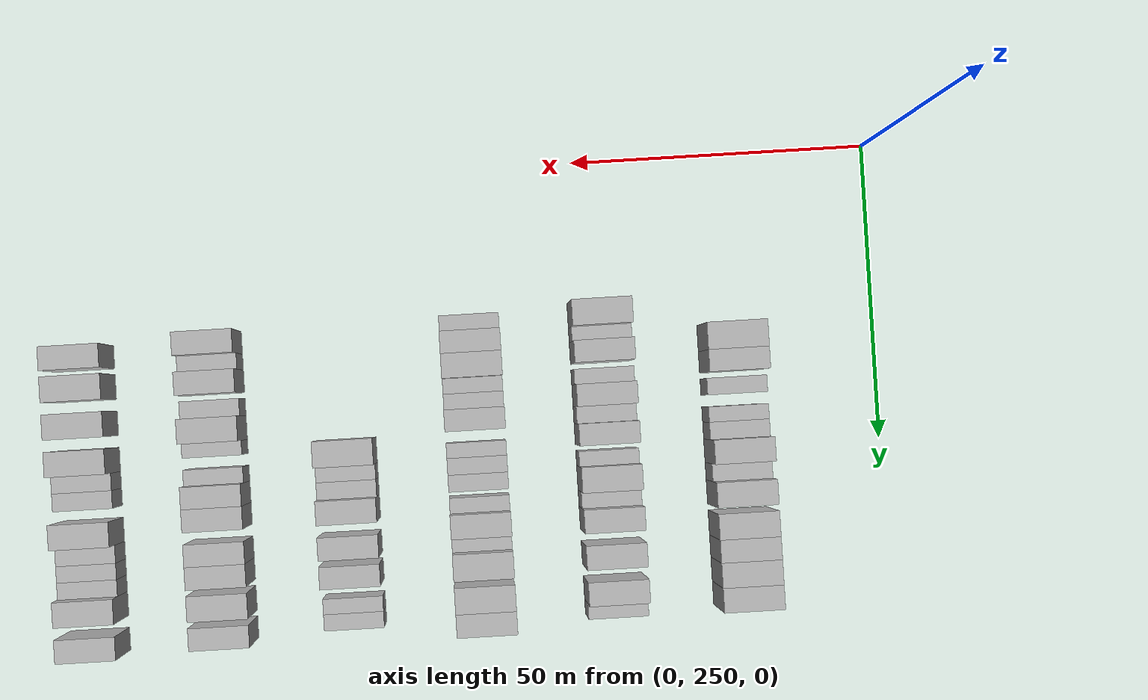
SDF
<sdf version="1.6">
 <world name="default">
  <model name="building_158">
   <static>1</static>
   <pose>25.0000 281.3262 0 0.000000 0.000000 0.000000</pose>
   <link name="link">
    <pose>0 0 4.50 0 0 0</pose>
    <collision name="collision"><geometry><box><size>10.0000 4.4945 9.0000</size></box></geometry></collision>
    <visual name="visual">
     <cast_shadows>0</cast_shadows>
     <geometry><box><size>10.0000 4.4945 9.0000</size></box></geometry>
     <material>
      <script>
       <uri>model://HANNAS_wall/materials/scripts</uri>
       <uri>model://HANNAS_wall/materials/textures</uri>
       <name>vrc/HANNAS_wall</name>
      </script>
     </material>
    </visual>
   </link>
  </model>
  <model name="building_159">
   <static>1</static>
   <pose>25.0000 285.4029 0 0.000000 0.000000 0.000000</pose>
   <link name="link">
    <pose>0 0 4.50 0 0 0</pose>
    <collision name="collision"><geometry><box><size>10.0000 3.6589 9.0000</size></box></geometry></collision>
    <visual name="visual">
     <cast_shadows>0</cast_shadows>
     <geometry><box><size>10.0000 3.6589 9.0000</size></box></geometry>
     <material>
      <script>
       <uri>model://HANNAS_wall/materials/scripts</uri>
       <uri>model://HANNAS_wall/materials/textures</uri>
       <name>vrc/HANNAS_wall</name>
      </script>
     </material>
    </visual>
   </link>
  </model>
  <model name="building_160">
   <static>1</static>
   <pose>25.0000 289.6306 0 0.000000 0.000000 0.000000</pose>
   <link name="link">
    <pose>0 0 3.00 0 0 0</pose>
    <collision name="collision"><geometry><box><size>10.0000 2.7967 6.0000</size></box></geometry></collision>
    <visual name="visual">
     <cast_shadows>0</cast_shadows>
     <geometry><box><size>10.0000 2.7967 6.0000</size></box></geometry>
     <material>
      <script>
       <uri>model://HANNAS_wall/materials/scripts</uri>
       <uri>model://HANNAS_wall/materials/textures</uri>
       <name>vrc/HANNAS_wall</name>
      </script>
     </material>
    </visual>
   </link>
  </model>
  <model name="building_161">
   <static>1</static>
   <pose>25.0000 294.3040 0 0.000000 0.000000 0.000000</pose>
   <link name="link">
    <pose>0 0 3.00 0 0 0</pose>
    <collision name="collision"><geometry><box><size>10.0000 2.5500 6.0000</size></box></geometry></collision>
    <visual name="visual">
     <cast_shadows>0</cast_shadows>
     <geometry><box><size>10.0000 2.5500 6.0000</size></box></geometry>
     <material>
      <script>
       <uri>model://HANNAS_wall/materials/scripts</uri>
       <uri>model://HANNAS_wall/materials/textures</uri>
       <name>vrc/HANNAS_wall</name>
      </script>
     </material>
    </visual>
   </link>
  </model>
  <model name="building_162">
   <static>1</static>
   <pose>25.0000 297.0370 0 0.000000 0.000000 0.000000</pose>
   <link name="link">
    <pose>0 0 3.00 0 0 0</pose>
    <collision name="collision"><geometry><box><size>10.0000 2.9160 6.0000</size></box></geometry></collision>
    <visual name="visual">
     <cast_shadows>0</cast_shadows>
     <geometry><box><size>10.0000 2.9160 6.0000</size></box></geometry>
     <material>
      <script>
       <uri>model://HANNAS_wall/materials/scripts</uri>
       <uri>model://HANNAS_wall/materials/textures</uri>
       <name>vrc/HANNAS_wall</name>
      </script>
     </material>
    </visual>
   </link>
  </model>
  <model name="building_163">
   <static>1</static>
   <pose>25.0000 300.5035 0 0.000000 0.000000 0.000000</pose>
   <link name="link">
    <pose>0 0 4.50 0 0 0</pose>
    <collision name="collision"><geometry><box><size>10.0000 4.0169 9.0000</size></box></geometry></collision>
    <visual name="visual">
     <cast_shadows>0</cast_shadows>
     <geometry><box><size>10.0000 4.0169 9.0000</size></box></geometry>
     <material>
      <script>
       <uri>model://HANNAS_wall/materials/scripts</uri>
       <uri>model://HANNAS_wall/materials/textures</uri>
       <name>vrc/HANNAS_wall</name>
      </script>
     </material>
    </visual>
   </link>
  </model>
  <model name="building_164">
   <static>1</static>
   <pose>25.0000 304.0001 0 0.000000 0.000000 0.000000</pose>
   <link name="link">
    <pose>0 0 3.00 0 0 0</pose>
    <collision name="collision"><geometry><box><size>10.0000 2.9763 6.0000</size></box></geometry></collision>
    <visual name="visual">
     <cast_shadows>0</cast_shadows>
     <geometry><box><size>10.0000 2.9763 6.0000</size></box></geometry>
     <material>
      <script>
       <uri>model://HANNAS_wall/materials/scripts</uri>
       <uri>model://HANNAS_wall/materials/textures</uri>
       <name>vrc/HANNAS_wall</name>
      </script>
     </material>
    </visual>
   </link>
  </model>
  <model name="building_165">
   <static>1</static>
   <pose>25.0000 307.5740 0 0.000000 0.000000 0.000000</pose>
   <link name="link">
    <pose>0 0 4.50 0 0 0</pose>
    <collision name="collision"><geometry><box><size>10.0000 4.1715 9.0000</size></box></geometry></collision>
    <visual name="visual">
     <cast_shadows>0</cast_shadows>
     <geometry><box><size>10.0000 4.1715 9.0000</size></box></geometry>
     <material>
      <script>
       <uri>model://HANNAS_wall/materials/scripts</uri>
       <uri>model://HANNAS_wall/materials/textures</uri>
       <name>vrc/HANNAS_wall</name>
      </script>
     </material>
    </visual>
   </link>
  </model>
  <model name="building_166">
   <static>1</static>
   <pose>25.0000 312.7942 0 0.000000 0.000000 0.000000</pose>
   <link name="link">
    <pose>0 0 4.50 0 0 0</pose>
    <collision name="collision"><geometry><box><size>10.0000 4.2689 9.0000</size></box></geometry></collision>
    <visual name="visual">
     <cast_shadows>0</cast_shadows>
     <geometry><box><size>10.0000 4.2689 9.0000</size></box></geometry>
     <material>
      <script>
       <uri>model://HANNAS_wall/materials/scripts</uri>
       <uri>model://HANNAS_wall/materials/textures</uri>
       <name>vrc/HANNAS_wall</name>
      </script>
     </material>
    </visual>
   </link>
  </model>
  <model name="building_167">
   <static>1</static>
   <pose>25.0000 316.8188 0 0.000000 0.000000 0.000000</pose>
   <link name="link">
    <pose>0 0 4.50 0 0 0</pose>
    <collision name="collision"><geometry><box><size>10.0000 3.7802 9.0000</size></box></geometry></collision>
    <visual name="visual">
     <cast_shadows>0</cast_shadows>
     <geometry><box><size>10.0000 3.7802 9.0000</size></box></geometry>
     <material>
      <script>
       <uri>model://HANNAS_wall/materials/scripts</uri>
       <uri>model://HANNAS_wall/materials/textures</uri>
       <name>vrc/HANNAS_wall</name>
      </script>
     </material>
    </visual>
   </link>
  </model>
  <model name="building_168">
   <static>1</static>
   <pose>25.0000 320.7726 0 0.000000 0.000000 0.000000</pose>
   <link name="link">
    <pose>0 0 4.50 0 0 0</pose>
    <collision name="collision"><geometry><box><size>10.0000 4.1275 9.0000</size></box></geometry></collision>
    <visual name="visual">
     <cast_shadows>0</cast_shadows>
     <geometry><box><size>10.0000 4.1275 9.0000</size></box></geometry>
     <material>
      <script>
       <uri>model://HANNAS_wall/materials/scripts</uri>
       <uri>model://HANNAS_wall/materials/textures</uri>
       <name>vrc/HANNAS_wall</name>
      </script>
     </material>
    </visual>
   </link>
  </model>
  <model name="building_169">
   <static>1</static>
   <pose>25.0000 324.8593 0 0.000000 0.000000 0.000000</pose>
   <link name="link">
    <pose>0 0 4.50 0 0 0</pose>
    <collision name="collision"><geometry><box><size>10.0000 4.0460 9.0000</size></box></geometry></collision>
    <visual name="visual">
     <cast_shadows>0</cast_shadows>
     <geometry><box><size>10.0000 4.0460 9.0000</size></box></geometry>
     <material>
      <script>
       <uri>model://HANNAS_wall/materials/scripts</uri>
       <uri>model://HANNAS_wall/materials/textures</uri>
       <name>vrc/HANNAS_wall</name>
      </script>
     </material>
    </visual>
   </link>
  </model>
  <model name="building_348">
   <static>1</static>
   <pose>47.0000 276.1629 0 0.000000 0.000000 0.000000</pose>
   <link name="link">
    <pose>0 0 4.50 0 0 0</pose>
    <collision name="collision"><geometry><box><size>10.0000 4.3160 9.0000</size></box></geometry></collision>
    <visual name="visual">
     <cast_shadows>0</cast_shadows>
     <geometry><box><size>10.0000 4.3160 9.0000</size></box></geometry>
     <material>
      <script>
       <uri>model://HANNAS_wall/materials/scripts</uri>
       <uri>model://HANNAS_wall/materials/textures</uri>
       <name>vrc/HANNAS_wall</name>
      </script>
     </material>
    </visual>
   </link>
  </model>
  <model name="building_349">
   <static>1</static>
   <pose>47.0000 279.5382 0 0.000000 0.000000 0.000000</pose>
   <link name="link">
    <pose>0 0 3.00 0 0 0</pose>
    <collision name="collision"><geometry><box><size>10.0000 2.4347 6.0000</size></box></geometry></collision>
    <visual name="visual">
     <cast_shadows>0</cast_shadows>
     <geometry><box><size>10.0000 2.4347 6.0000</size></box></geometry>
     <material>
      <script>
       <uri>model://HANNAS_wall/materials/scripts</uri>
       <uri>model://HANNAS_wall/materials/textures</uri>
       <name>vrc/HANNAS_wall</name>
      </script>
     </material>
    </visual>
   </link>
  </model>
  <model name="building_350">
   <static>1</static>
   <pose>47.0000 282.5893 0 0.000000 0.000000 0.000000</pose>
   <link name="link">
    <pose>0 0 4.50 0 0 0</pose>
    <collision name="collision"><geometry><box><size>10.0000 3.6675 9.0000</size></box></geometry></collision>
    <visual name="visual">
     <cast_shadows>0</cast_shadows>
     <geometry><box><size>10.0000 3.6675 9.0000</size></box></geometry>
     <material>
      <script>
       <uri>model://HANNAS_wall/materials/scripts</uri>
       <uri>model://HANNAS_wall/materials/textures</uri>
       <name>vrc/HANNAS_wall</name>
      </script>
     </material>
    </visual>
   </link>
  </model>
  <model name="building_351">
   <static>1</static>
   <pose>47.0000 286.7041 0 0.000000 0.000000 0.000000</pose>
   <link name="link">
    <pose>0 0 3.00 0 0 0</pose>
    <collision name="collision"><geometry><box><size>10.0000 2.5620 6.0000</size></box></geometry></collision>
    <visual name="visual">
     <cast_shadows>0</cast_shadows>
     <geometry><box><size>10.0000 2.5620 6.0000</size></box></geometry>
     <material>
      <script>
       <uri>model://HANNAS_wall/materials/scripts</uri>
       <uri>model://HANNAS_wall/materials/textures</uri>
       <name>vrc/HANNAS_wall</name>
      </script>
     </material>
    </visual>
   </link>
  </model>
  <model name="building_352">
   <static>1</static>
   <pose>47.0000 289.8244 0 0.000000 0.000000 0.000000</pose>
   <link name="link">
    <pose>0 0 4.50 0 0 0</pose>
    <collision name="collision"><geometry><box><size>10.0000 3.6787 9.0000</size></box></geometry></collision>
    <visual name="visual">
     <cast_shadows>0</cast_shadows>
     <geometry><box><size>10.0000 3.6787 9.0000</size></box></geometry>
     <material>
      <script>
       <uri>model://HANNAS_wall/materials/scripts</uri>
       <uri>model://HANNAS_wall/materials/textures</uri>
       <name>vrc/HANNAS_wall</name>
      </script>
     </material>
    </visual>
   </link>
  </model>
  <model name="building_353">
   <static>1</static>
   <pose>47.0000 293.0947 0 0.000000 0.000000 0.000000</pose>
   <link name="link">
    <pose>0 0 3.00 0 0 0</pose>
    <collision name="collision"><geometry><box><size>10.0000 2.8618 6.0000</size></box></geometry></collision>
    <visual name="visual">
     <cast_shadows>0</cast_shadows>
     <geometry><box><size>10.0000 2.8618 6.0000</size></box></geometry>
     <material>
      <script>
       <uri>model://HANNAS_wall/materials/scripts</uri>
       <uri>model://HANNAS_wall/materials/textures</uri>
       <name>vrc/HANNAS_wall</name>
      </script>
     </material>
    </visual>
   </link>
  </model>
  <model name="building_354">
   <static>1</static>
   <pose>47.0000 296.3390 0 0.000000 0.000000 0.000000</pose>
   <link name="link">
    <pose>0 0 4.50 0 0 0</pose>
    <collision name="collision"><geometry><box><size>10.0000 3.6269 9.0000</size></box></geometry></collision>
    <visual name="visual">
     <cast_shadows>0</cast_shadows>
     <geometry><box><size>10.0000 3.6269 9.0000</size></box></geometry>
     <material>
      <script>
       <uri>model://HANNAS_wall/materials/scripts</uri>
       <uri>model://HANNAS_wall/materials/textures</uri>
       <name>vrc/HANNAS_wall</name>
      </script>
     </material>
    </visual>
   </link>
  </model>
  <model name="building_355">
   <static>1</static>
   <pose>47.0000 300.4190 0 0.000000 0.000000 0.000000</pose>
   <link name="link">
    <pose>0 0 3.00 0 0 0</pose>
    <collision name="collision"><geometry><box><size>10.0000 2.5331 6.0000</size></box></geometry></collision>
    <visual name="visual">
     <cast_shadows>0</cast_shadows>
     <geometry><box><size>10.0000 2.5331 6.0000</size></box></geometry>
     <material>
      <script>
       <uri>model://HANNAS_wall/materials/scripts</uri>
       <uri>model://HANNAS_wall/materials/textures</uri>
       <name>vrc/HANNAS_wall</name>
      </script>
     </material>
    </visual>
   </link>
  </model>
  <model name="building_356">
   <static>1</static>
   <pose>47.0000 303.8055 0 0.000000 0.000000 0.000000</pose>
   <link name="link">
    <pose>0 0 4.50 0 0 0</pose>
    <collision name="collision"><geometry><box><size>10.0000 4.2398 9.0000</size></box></geometry></collision>
    <visual name="visual">
     <cast_shadows>0</cast_shadows>
     <geometry><box><size>10.0000 4.2398 9.0000</size></box></geometry>
     <material>
      <script>
       <uri>model://HANNAS_wall/materials/scripts</uri>
       <uri>model://HANNAS_wall/materials/textures</uri>
       <name>vrc/HANNAS_wall</name>
      </script>
     </material>
    </visual>
   </link>
  </model>
  <model name="building_357">
   <static>1</static>
   <pose>47.0000 307.2981 0 0.000000 0.000000 0.000000</pose>
   <link name="link">
    <pose>0 0 3.00 0 0 0</pose>
    <collision name="collision"><geometry><box><size>10.0000 2.7455 6.0000</size></box></geometry></collision>
    <visual name="visual">
     <cast_shadows>0</cast_shadows>
     <geometry><box><size>10.0000 2.7455 6.0000</size></box></geometry>
     <material>
      <script>
       <uri>model://HANNAS_wall/materials/scripts</uri>
       <uri>model://HANNAS_wall/materials/textures</uri>
       <name>vrc/HANNAS_wall</name>
      </script>
     </material>
    </visual>
   </link>
  </model>
  <model name="building_358">
   <static>1</static>
   <pose>47.0000 310.6303 0 0.000000 0.000000 0.000000</pose>
   <link name="link">
    <pose>0 0 4.50 0 0 0</pose>
    <collision name="collision"><geometry><box><size>10.0000 3.9187 9.0000</size></box></geometry></collision>
    <visual name="visual">
     <cast_shadows>0</cast_shadows>
     <geometry><box><size>10.0000 3.9187 9.0000</size></box></geometry>
     <material>
      <script>
       <uri>model://HANNAS_wall/materials/scripts</uri>
       <uri>model://HANNAS_wall/materials/textures</uri>
       <name>vrc/HANNAS_wall</name>
      </script>
     </material>
    </visual>
   </link>
  </model>
  <model name="building_359">
   <static>1</static>
   <pose>47.0000 316.5955 0 0.000000 0.000000 0.000000</pose>
   <link name="link">
    <pose>0 0 4.50 0 0 0</pose>
    <collision name="collision"><geometry><box><size>10.0000 4.0117 9.0000</size></box></geometry></collision>
    <visual name="visual">
     <cast_shadows>0</cast_shadows>
     <geometry><box><size>10.0000 4.0117 9.0000</size></box></geometry>
     <material>
      <script>
       <uri>model://HANNAS_wall/materials/scripts</uri>
       <uri>model://HANNAS_wall/materials/textures</uri>
       <name>vrc/HANNAS_wall</name>
      </script>
     </material>
    </visual>
   </link>
  </model>
  <model name="building_360">
   <static>1</static>
   <pose>47.0000 322.5733 0 0.000000 0.000000 0.000000</pose>
   <link name="link">
    <pose>0 0 4.50 0 0 0</pose>
    <collision name="collision"><geometry><box><size>10.0000 3.9439 9.0000</size></box></geometry></collision>
    <visual name="visual">
     <cast_shadows>0</cast_shadows>
     <geometry><box><size>10.0000 3.9439 9.0000</size></box></geometry>
     <material>
      <script>
       <uri>model://HANNAS_wall/materials/scripts</uri>
       <uri>model://HANNAS_wall/materials/textures</uri>
       <name>vrc/HANNAS_wall</name>
      </script>
     </material>
    </visual>
   </link>
  </model>
  <model name="building_361">
   <static>1</static>
   <pose>47.0000 325.8267 0 0.000000 0.000000 0.000000</pose>
   <link name="link">
    <pose>0 0 3.00 0 0 0</pose>
    <collision name="collision"><geometry><box><size>10.0000 2.5629 6.0000</size></box></geometry></collision>
    <visual name="visual">
     <cast_shadows>0</cast_shadows>
     <geometry><box><size>10.0000 2.5629 6.0000</size></box></geometry>
     <material>
      <script>
       <uri>model://HANNAS_wall/materials/scripts</uri>
       <uri>model://HANNAS_wall/materials/textures</uri>
       <name>vrc/HANNAS_wall</name>
      </script>
     </material>
    </visual>
   </link>
  </model>
  <model name="building_539">
   <static>1</static>
   <pose>69.0000 276.5492 0 0.000000 0.000000 0.000000</pose>
   <link name="link">
    <pose>0 0 3.00 0 0 0</pose>
    <collision name="collision"><geometry><box><size>10.0000 2.7350 6.0000</size></box></geometry></collision>
    <visual name="visual">
     <cast_shadows>0</cast_shadows>
     <geometry><box><size>10.0000 2.7350 6.0000</size></box></geometry>
     <material>
      <script>
       <uri>model://HANNAS_wall/materials/scripts</uri>
       <uri>model://HANNAS_wall/materials/textures</uri>
       <name>vrc/HANNAS_wall</name>
      </script>
     </material>
    </visual>
   </link>
  </model>
  <model name="building_540">
   <static>1</static>
   <pose>69.0000 279.7661 0 0.000000 0.000000 0.000000</pose>
   <link name="link">
    <pose>0 0 4.50 0 0 0</pose>
    <collision name="collision"><geometry><box><size>10.0000 3.6988 9.0000</size></box></geometry></collision>
    <visual name="visual">
     <cast_shadows>0</cast_shadows>
     <geometry><box><size>10.0000 3.6988 9.0000</size></box></geometry>
     <material>
      <script>
       <uri>model://HANNAS_wall/materials/scripts</uri>
       <uri>model://HANNAS_wall/materials/textures</uri>
       <name>vrc/HANNAS_wall</name>
      </script>
     </material>
    </visual>
   </link>
  </model>
  <model name="building_541">
   <static>1</static>
   <pose>69.0000 283.6665 0 0.000000 0.000000 0.000000</pose>
   <link name="link">
    <pose>0 0 4.50 0 0 0</pose>
    <collision name="collision"><geometry><box><size>10.0000 4.1020 9.0000</size></box></geometry></collision>
    <visual name="visual">
     <cast_shadows>0</cast_shadows>
     <geometry><box><size>10.0000 4.1020 9.0000</size></box></geometry>
     <material>
      <script>
       <uri>model://HANNAS_wall/materials/scripts</uri>
       <uri>model://HANNAS_wall/materials/textures</uri>
       <name>vrc/HANNAS_wall</name>
      </script>
     </material>
    </visual>
   </link>
  </model>
  <model name="building_542">
   <static>1</static>
   <pose>69.0000 287.0019 0 0.000000 0.000000 0.000000</pose>
   <link name="link">
    <pose>0 0 3.00 0 0 0</pose>
    <collision name="collision"><geometry><box><size>10.0000 2.5689 6.0000</size></box></geometry></collision>
    <visual name="visual">
     <cast_shadows>0</cast_shadows>
     <geometry><box><size>10.0000 2.5689 6.0000</size></box></geometry>
     <material>
      <script>
       <uri>model://HANNAS_wall/materials/scripts</uri>
       <uri>model://HANNAS_wall/materials/textures</uri>
       <name>vrc/HANNAS_wall</name>
      </script>
     </material>
    </visual>
   </link>
  </model>
  <model name="building_543">
   <static>1</static>
   <pose>69.0000 289.5910 0 0.000000 0.000000 0.000000</pose>
   <link name="link">
    <pose>0 0 3.00 0 0 0</pose>
    <collision name="collision"><geometry><box><size>10.0000 2.6094 6.0000</size></box></geometry></collision>
    <visual name="visual">
     <cast_shadows>0</cast_shadows>
     <geometry><box><size>10.0000 2.6094 6.0000</size></box></geometry>
     <material>
      <script>
       <uri>model://HANNAS_wall/materials/scripts</uri>
       <uri>model://HANNAS_wall/materials/textures</uri>
       <name>vrc/HANNAS_wall</name>
      </script>
     </material>
    </visual>
   </link>
  </model>
  <model name="building_544">
   <static>1</static>
   <pose>69.0000 292.7013 0 0.000000 0.000000 0.000000</pose>
   <link name="link">
    <pose>0 0 4.50 0 0 0</pose>
    <collision name="collision"><geometry><box><size>10.0000 3.6111 9.0000</size></box></geometry></collision>
    <visual name="visual">
     <cast_shadows>0</cast_shadows>
     <geometry><box><size>10.0000 3.6111 9.0000</size></box></geometry>
     <material>
      <script>
       <uri>model://HANNAS_wall/materials/scripts</uri>
       <uri>model://HANNAS_wall/materials/textures</uri>
       <name>vrc/HANNAS_wall</name>
      </script>
     </material>
    </visual>
   </link>
  </model>
  <model name="building_545">
   <static>1</static>
   <pose>69.0000 297.7577 0 0.000000 0.000000 0.000000</pose>
   <link name="link">
    <pose>0 0 3.00 0 0 0</pose>
    <collision name="collision"><geometry><box><size>10.0000 2.5017 6.0000</size></box></geometry></collision>
    <visual name="visual">
     <cast_shadows>0</cast_shadows>
     <geometry><box><size>10.0000 2.5017 6.0000</size></box></geometry>
     <material>
      <script>
       <uri>model://HANNAS_wall/materials/scripts</uri>
       <uri>model://HANNAS_wall/materials/textures</uri>
       <name>vrc/HANNAS_wall</name>
      </script>
     </material>
    </visual>
   </link>
  </model>
  <model name="building_546">
   <static>1</static>
   <pose>69.0000 300.4136 0 0.000000 0.000000 0.000000</pose>
   <link name="link">
    <pose>0 0 3.00 0 0 0</pose>
    <collision name="collision"><geometry><box><size>10.0000 2.8100 6.0000</size></box></geometry></collision>
    <visual name="visual">
     <cast_shadows>0</cast_shadows>
     <geometry><box><size>10.0000 2.8100 6.0000</size></box></geometry>
     <material>
      <script>
       <uri>model://HANNAS_wall/materials/scripts</uri>
       <uri>model://HANNAS_wall/materials/textures</uri>
       <name>vrc/HANNAS_wall</name>
      </script>
     </material>
    </visual>
   </link>
  </model>
  <model name="building_547">
   <static>1</static>
   <pose>69.0000 303.2296 0 0.000000 0.000000 0.000000</pose>
   <link name="link">
    <pose>0 0 3.00 0 0 0</pose>
    <collision name="collision"><geometry><box><size>10.0000 2.8220 6.0000</size></box></geometry></collision>
    <visual name="visual">
     <cast_shadows>0</cast_shadows>
     <geometry><box><size>10.0000 2.8220 6.0000</size></box></geometry>
     <material>
      <script>
       <uri>model://HANNAS_wall/materials/scripts</uri>
       <uri>model://HANNAS_wall/materials/textures</uri>
       <name>vrc/HANNAS_wall</name>
      </script>
     </material>
    </visual>
   </link>
  </model>
  <model name="building_548">
   <static>1</static>
   <pose>69.0000 306.9405 0 0.000000 0.000000 0.000000</pose>
   <link name="link">
    <pose>0 0 3.00 0 0 0</pose>
    <collision name="collision"><geometry><box><size>10.0000 2.5997 6.0000</size></box></geometry></collision>
    <visual name="visual">
     <cast_shadows>0</cast_shadows>
     <geometry><box><size>10.0000 2.5997 6.0000</size></box></geometry>
     <material>
      <script>
       <uri>model://HANNAS_wall/materials/scripts</uri>
       <uri>model://HANNAS_wall/materials/textures</uri>
       <name>vrc/HANNAS_wall</name>
      </script>
     </material>
    </visual>
   </link>
  </model>
  <model name="building_549">
   <static>1</static>
   <pose>69.0000 310.2443 0 0.000000 0.000000 0.000000</pose>
   <link name="link">
    <pose>0 0 4.50 0 0 0</pose>
    <collision name="collision"><geometry><box><size>10.0000 4.0080 9.0000</size></box></geometry></collision>
    <visual name="visual">
     <cast_shadows>0</cast_shadows>
     <geometry><box><size>10.0000 4.0080 9.0000</size></box></geometry>
     <material>
      <script>
       <uri>model://HANNAS_wall/materials/scripts</uri>
       <uri>model://HANNAS_wall/materials/textures</uri>
       <name>vrc/HANNAS_wall</name>
      </script>
     </material>
    </visual>
   </link>
  </model>
  <model name="building_550">
   <static>1</static>
   <pose>69.0000 313.4828 0 0.000000 0.000000 0.000000</pose>
   <link name="link">
    <pose>0 0 3.00 0 0 0</pose>
    <collision name="collision"><geometry><box><size>10.0000 2.4690 6.0000</size></box></geometry></collision>
    <visual name="visual">
     <cast_shadows>0</cast_shadows>
     <geometry><box><size>10.0000 2.4690 6.0000</size></box></geometry>
     <material>
      <script>
       <uri>model://HANNAS_wall/materials/scripts</uri>
       <uri>model://HANNAS_wall/materials/textures</uri>
       <name>vrc/HANNAS_wall</name>
      </script>
     </material>
    </visual>
   </link>
  </model>
  <model name="building_551">
   <static>1</static>
   <pose>69.0000 316.9546 0 0.000000 0.000000 0.000000</pose>
   <link name="link">
    <pose>0 0 4.50 0 0 0</pose>
    <collision name="collision"><geometry><box><size>10.0000 4.4747 9.0000</size></box></geometry></collision>
    <visual name="visual">
     <cast_shadows>0</cast_shadows>
     <geometry><box><size>10.0000 4.4747 9.0000</size></box></geometry>
     <material>
      <script>
       <uri>model://HANNAS_wall/materials/scripts</uri>
       <uri>model://HANNAS_wall/materials/textures</uri>
       <name>vrc/HANNAS_wall</name>
      </script>
     </material>
    </visual>
   </link>
  </model>
  <model name="building_552">
   <static>1</static>
   <pose>69.0000 322.3818 0 0.000000 0.000000 0.000000</pose>
   <link name="link">
    <pose>0 0 4.50 0 0 0</pose>
    <collision name="collision"><geometry><box><size>10.0000 4.3797 9.0000</size></box></geometry></collision>
    <visual name="visual">
     <cast_shadows>0</cast_shadows>
     <geometry><box><size>10.0000 4.3797 9.0000</size></box></geometry>
     <material>
      <script>
       <uri>model://HANNAS_wall/materials/scripts</uri>
       <uri>model://HANNAS_wall/materials/textures</uri>
       <name>vrc/HANNAS_wall</name>
      </script>
     </material>
    </visual>
   </link>
  </model>
  <model name="building_553">
   <static>1</static>
   <pose>69.0000 326.4814 0 0.000000 0.000000 0.000000</pose>
   <link name="link">
    <pose>0 0 4.50 0 0 0</pose>
    <collision name="collision"><geometry><box><size>10.0000 3.8194 9.0000</size></box></geometry></collision>
    <visual name="visual">
     <cast_shadows>0</cast_shadows>
     <geometry><box><size>10.0000 3.8194 9.0000</size></box></geometry>
     <material>
      <script>
       <uri>model://HANNAS_wall/materials/scripts</uri>
       <uri>model://HANNAS_wall/materials/textures</uri>
       <name>vrc/HANNAS_wall</name>
      </script>
     </material>
    </visual>
   </link>
  </model>
  <model name="building_736">
   <static>1</static>
   <pose>91.0000 296.9986 0 0.000000 0.000000 0.000000</pose>
   <link name="link">
    <pose>0 0 4.50 0 0 0</pose>
    <collision name="collision"><geometry><box><size>10.0000 4.3578 9.0000</size></box></geometry></collision>
    <visual name="visual">
     <cast_shadows>0</cast_shadows>
     <geometry><box><size>10.0000 4.3578 9.0000</size></box></geometry>
     <material>
      <script>
       <uri>model://HANNAS_wall/materials/scripts</uri>
       <uri>model://HANNAS_wall/materials/textures</uri>
       <name>vrc/HANNAS_wall</name>
      </script>
     </material>
    </visual>
   </link>
  </model>
  <model name="building_737">
   <static>1</static>
   <pose>91.0000 300.4630 0 0.000000 0.000000 0.000000</pose>
   <link name="link">
    <pose>0 0 3.00 0 0 0</pose>
    <collision name="collision"><geometry><box><size>10.0000 2.5711 6.0000</size></box></geometry></collision>
    <visual name="visual">
     <cast_shadows>0</cast_shadows>
     <geometry><box><size>10.0000 2.5711 6.0000</size></box></geometry>
     <material>
      <script>
       <uri>model://HANNAS_wall/materials/scripts</uri>
       <uri>model://HANNAS_wall/materials/textures</uri>
       <name>vrc/HANNAS_wall</name>
      </script>
     </material>
    </visual>
   </link>
  </model>
  <model name="building_738">
   <static>1</static>
   <pose>91.0000 303.2059 0 0.000000 0.000000 0.000000</pose>
   <link name="link">
    <pose>0 0 3.00 0 0 0</pose>
    <collision name="collision"><geometry><box><size>10.0000 2.9147 6.0000</size></box></geometry></collision>
    <visual name="visual">
     <cast_shadows>0</cast_shadows>
     <geometry><box><size>10.0000 2.9147 6.0000</size></box></geometry>
     <material>
      <script>
       <uri>model://HANNAS_wall/materials/scripts</uri>
       <uri>model://HANNAS_wall/materials/textures</uri>
       <name>vrc/HANNAS_wall</name>
      </script>
     </material>
    </visual>
   </link>
  </model>
  <model name="building_739">
   <static>1</static>
   <pose>91.0000 306.6522 0 0.000000 0.000000 0.000000</pose>
   <link name="link">
    <pose>0 0 4.50 0 0 0</pose>
    <collision name="collision"><geometry><box><size>10.0000 3.9777 9.0000</size></box></geometry></collision>
    <visual name="visual">
     <cast_shadows>0</cast_shadows>
     <geometry><box><size>10.0000 3.9777 9.0000</size></box></geometry>
     <material>
      <script>
       <uri>model://HANNAS_wall/materials/scripts</uri>
       <uri>model://HANNAS_wall/materials/textures</uri>
       <name>vrc/HANNAS_wall</name>
      </script>
     </material>
    </visual>
   </link>
  </model>
  <model name="building_740">
   <static>1</static>
   <pose>91.0000 312.5573 0 0.000000 0.000000 0.000000</pose>
   <link name="link">
    <pose>0 0 4.50 0 0 0</pose>
    <collision name="collision"><geometry><box><size>10.0000 3.8325 9.0000</size></box></geometry></collision>
    <visual name="visual">
     <cast_shadows>0</cast_shadows>
     <geometry><box><size>10.0000 3.8325 9.0000</size></box></geometry>
     <material>
      <script>
       <uri>model://HANNAS_wall/materials/scripts</uri>
       <uri>model://HANNAS_wall/materials/textures</uri>
       <name>vrc/HANNAS_wall</name>
      </script>
     </material>
    </visual>
   </link>
  </model>
  <model name="building_741">
   <static>1</static>
   <pose>91.0000 317.3094 0 0.000000 0.000000 0.000000</pose>
   <link name="link">
    <pose>0 0 4.50 0 0 0</pose>
    <collision name="collision"><geometry><box><size>10.0000 3.6716 9.0000</size></box></geometry></collision>
    <visual name="visual">
     <cast_shadows>0</cast_shadows>
     <geometry><box><size>10.0000 3.6716 9.0000</size></box></geometry>
     <material>
      <script>
       <uri>model://HANNAS_wall/materials/scripts</uri>
       <uri>model://HANNAS_wall/materials/textures</uri>
       <name>vrc/HANNAS_wall</name>
      </script>
     </material>
    </visual>
   </link>
  </model>
  <model name="building_742">
   <static>1</static>
   <pose>91.0000 322.4280 0 0.000000 0.000000 0.000000</pose>
   <link name="link">
    <pose>0 0 3.00 0 0 0</pose>
    <collision name="collision"><geometry><box><size>10.0000 2.5657 6.0000</size></box></geometry></collision>
    <visual name="visual">
     <cast_shadows>0</cast_shadows>
     <geometry><box><size>10.0000 2.5657 6.0000</size></box></geometry>
     <material>
      <script>
       <uri>model://HANNAS_wall/materials/scripts</uri>
       <uri>model://HANNAS_wall/materials/textures</uri>
       <name>vrc/HANNAS_wall</name>
      </script>
     </material>
    </visual>
   </link>
  </model>
  <model name="building_743">
   <static>1</static>
   <pose>91.0000 325.0670 0 0.000000 0.000000 0.000000</pose>
   <link name="link">
    <pose>0 0 3.00 0 0 0</pose>
    <collision name="collision"><geometry><box><size>10.0000 2.7124 6.0000</size></box></geometry></collision>
    <visual name="visual">
     <cast_shadows>0</cast_shadows>
     <geometry><box><size>10.0000 2.7124 6.0000</size></box></geometry>
     <material>
      <script>
       <uri>model://HANNAS_wall/materials/scripts</uri>
       <uri>model://HANNAS_wall/materials/textures</uri>
       <name>vrc/HANNAS_wall</name>
      </script>
     </material>
    </visual>
   </link>
  </model>
  <model name="building_911">
   <static>1</static>
   <pose>113.0000 277.3767 0 0.000000 0.000000 0.000000</pose>
   <link name="link">
    <pose>0 0 4.50 0 0 0</pose>
    <collision name="collision"><geometry><box><size>10.0000 3.8989 9.0000</size></box></geometry></collision>
    <visual name="visual">
     <cast_shadows>0</cast_shadows>
     <geometry><box><size>10.0000 3.8989 9.0000</size></box></geometry>
     <material>
      <script>
       <uri>model://HANNAS_wall/materials/scripts</uri>
       <uri>model://HANNAS_wall/materials/textures</uri>
       <name>vrc/HANNAS_wall</name>
      </script>
     </material>
    </visual>
   </link>
  </model>
  <model name="building_912">
   <static>1</static>
   <pose>113.0000 280.6821 0 0.000000 0.000000 0.000000</pose>
   <link name="link">
    <pose>0 0 3.00 0 0 0</pose>
    <collision name="collision"><geometry><box><size>10.0000 2.7117 6.0000</size></box></geometry></collision>
    <visual name="visual">
     <cast_shadows>0</cast_shadows>
     <geometry><box><size>10.0000 2.7117 6.0000</size></box></geometry>
     <material>
      <script>
       <uri>model://HANNAS_wall/materials/scripts</uri>
       <uri>model://HANNAS_wall/materials/textures</uri>
       <name>vrc/HANNAS_wall</name>
      </script>
     </material>
    </visual>
   </link>
  </model>
  <model name="building_913">
   <static>1</static>
   <pose>113.0000 283.9781 0 0.000000 0.000000 0.000000</pose>
   <link name="link">
    <pose>0 0 4.50 0 0 0</pose>
    <collision name="collision"><geometry><box><size>10.0000 3.8804 9.0000</size></box></geometry></collision>
    <visual name="visual">
     <cast_shadows>0</cast_shadows>
     <geometry><box><size>10.0000 3.8804 9.0000</size></box></geometry>
     <material>
      <script>
       <uri>model://HANNAS_wall/materials/scripts</uri>
       <uri>model://HANNAS_wall/materials/textures</uri>
       <name>vrc/HANNAS_wall</name>
      </script>
     </material>
    </visual>
   </link>
  </model>
  <model name="building_914">
   <static>1</static>
   <pose>113.0000 288.3691 0 0.000000 0.000000 0.000000</pose>
   <link name="link">
    <pose>0 0 3.00 0 0 0</pose>
    <collision name="collision"><geometry><box><size>10.0000 2.9015 6.0000</size></box></geometry></collision>
    <visual name="visual">
     <cast_shadows>0</cast_shadows>
     <geometry><box><size>10.0000 2.9015 6.0000</size></box></geometry>
     <material>
      <script>
       <uri>model://HANNAS_wall/materials/scripts</uri>
       <uri>model://HANNAS_wall/materials/textures</uri>
       <name>vrc/HANNAS_wall</name>
      </script>
     </material>
    </visual>
   </link>
  </model>
  <model name="building_915">
   <static>1</static>
   <pose>113.0000 291.8792 0 0.000000 0.000000 0.000000</pose>
   <link name="link">
    <pose>0 0 4.50 0 0 0</pose>
    <collision name="collision"><geometry><box><size>10.0000 4.1188 9.0000</size></box></geometry></collision>
    <visual name="visual">
     <cast_shadows>0</cast_shadows>
     <geometry><box><size>10.0000 4.1188 9.0000</size></box></geometry>
     <material>
      <script>
       <uri>model://HANNAS_wall/materials/scripts</uri>
       <uri>model://HANNAS_wall/materials/textures</uri>
       <name>vrc/HANNAS_wall</name>
      </script>
     </material>
    </visual>
   </link>
  </model>
  <model name="building_916">
   <static>1</static>
   <pose>113.0000 295.1407 0 0.000000 0.000000 0.000000</pose>
   <link name="link">
    <pose>0 0 3.00 0 0 0</pose>
    <collision name="collision"><geometry><box><size>10.0000 2.4042 6.0000</size></box></geometry></collision>
    <visual name="visual">
     <cast_shadows>0</cast_shadows>
     <geometry><box><size>10.0000 2.4042 6.0000</size></box></geometry>
     <material>
      <script>
       <uri>model://HANNAS_wall/materials/scripts</uri>
       <uri>model://HANNAS_wall/materials/textures</uri>
       <name>vrc/HANNAS_wall</name>
      </script>
     </material>
    </visual>
   </link>
  </model>
  <model name="building_917">
   <static>1</static>
   <pose>113.0000 299.6905 0 0.000000 0.000000 0.000000</pose>
   <link name="link">
    <pose>0 0 3.00 0 0 0</pose>
    <collision name="collision"><geometry><box><size>10.0000 2.6955 6.0000</size></box></geometry></collision>
    <visual name="visual">
     <cast_shadows>0</cast_shadows>
     <geometry><box><size>10.0000 2.6955 6.0000</size></box></geometry>
     <material>
      <script>
       <uri>model://HANNAS_wall/materials/scripts</uri>
       <uri>model://HANNAS_wall/materials/textures</uri>
       <name>vrc/HANNAS_wall</name>
      </script>
     </material>
    </visual>
   </link>
  </model>
  <model name="building_918">
   <static>1</static>
   <pose>113.0000 302.8647 0 0.000000 0.000000 0.000000</pose>
   <link name="link">
    <pose>0 0 4.50 0 0 0</pose>
    <collision name="collision"><geometry><box><size>10.0000 3.6529 9.0000</size></box></geometry></collision>
    <visual name="visual">
     <cast_shadows>0</cast_shadows>
     <geometry><box><size>10.0000 3.6529 9.0000</size></box></geometry>
     <material>
      <script>
       <uri>model://HANNAS_wall/materials/scripts</uri>
       <uri>model://HANNAS_wall/materials/textures</uri>
       <name>vrc/HANNAS_wall</name>
      </script>
     </material>
    </visual>
   </link>
  </model>
  <model name="building_919">
   <static>1</static>
   <pose>113.0000 306.5831 0 0.000000 0.000000 0.000000</pose>
   <link name="link">
    <pose>0 0 4.50 0 0 0</pose>
    <collision name="collision"><geometry><box><size>10.0000 3.7839 9.0000</size></box></geometry></collision>
    <visual name="visual">
     <cast_shadows>0</cast_shadows>
     <geometry><box><size>10.0000 3.7839 9.0000</size></box></geometry>
     <material>
      <script>
       <uri>model://HANNAS_wall/materials/scripts</uri>
       <uri>model://HANNAS_wall/materials/textures</uri>
       <name>vrc/HANNAS_wall</name>
      </script>
     </material>
    </visual>
   </link>
  </model>
  <model name="building_920">
   <static>1</static>
   <pose>113.0000 312.3288 0 0.000000 0.000000 0.000000</pose>
   <link name="link">
    <pose>0 0 4.50 0 0 0</pose>
    <collision name="collision"><geometry><box><size>10.0000 3.7075 9.0000</size></box></geometry></collision>
    <visual name="visual">
     <cast_shadows>0</cast_shadows>
     <geometry><box><size>10.0000 3.7075 9.0000</size></box></geometry>
     <material>
      <script>
       <uri>model://HANNAS_wall/materials/scripts</uri>
       <uri>model://HANNAS_wall/materials/textures</uri>
       <name>vrc/HANNAS_wall</name>
      </script>
     </material>
    </visual>
   </link>
  </model>
  <model name="building_921">
   <static>1</static>
   <pose>113.0000 316.0685 0 0.000000 0.000000 0.000000</pose>
   <link name="link">
    <pose>0 0 4.50 0 0 0</pose>
    <collision name="collision"><geometry><box><size>10.0000 3.7719 9.0000</size></box></geometry></collision>
    <visual name="visual">
     <cast_shadows>0</cast_shadows>
     <geometry><box><size>10.0000 3.7719 9.0000</size></box></geometry>
     <material>
      <script>
       <uri>model://HANNAS_wall/materials/scripts</uri>
       <uri>model://HANNAS_wall/materials/textures</uri>
       <name>vrc/HANNAS_wall</name>
      </script>
     </material>
    </visual>
   </link>
  </model>
  <model name="building_922">
   <static>1</static>
   <pose>113.0000 321.0772 0 0.000000 0.000000 0.000000</pose>
   <link name="link">
    <pose>0 0 4.50 0 0 0</pose>
    <collision name="collision"><geometry><box><size>10.0000 4.2457 9.0000</size></box></geometry></collision>
    <visual name="visual">
     <cast_shadows>0</cast_shadows>
     <geometry><box><size>10.0000 4.2457 9.0000</size></box></geometry>
     <material>
      <script>
       <uri>model://HANNAS_wall/materials/scripts</uri>
       <uri>model://HANNAS_wall/materials/textures</uri>
       <name>vrc/HANNAS_wall</name>
      </script>
     </material>
    </visual>
   </link>
  </model>
  <model name="building_923">
   <static>1</static>
   <pose>113.0000 326.0552 0 0.000000 0.000000 0.000000</pose>
   <link name="link">
    <pose>0 0 4.50 0 0 0</pose>
    <collision name="collision"><geometry><box><size>10.0000 3.7102 9.0000</size></box></geometry></collision>
    <visual name="visual">
     <cast_shadows>0</cast_shadows>
     <geometry><box><size>10.0000 3.7102 9.0000</size></box></geometry>
     <material>
      <script>
       <uri>model://HANNAS_wall/materials/scripts</uri>
       <uri>model://HANNAS_wall/materials/textures</uri>
       <name>vrc/HANNAS_wall</name>
      </script>
     </material>
    </visual>
   </link>
  </model>
  <model name="building_1093">
   <static>1</static>
   <pose>135.0000 278.5300 0 0.000000 0.000000 0.000000</pose>
   <link name="link">
    <pose>0 0 4.50 0 0 0</pose>
    <collision name="collision"><geometry><box><size>10.0000 3.9595 9.0000</size></box></geometry></collision>
    <visual name="visual">
     <cast_shadows>0</cast_shadows>
     <geometry><box><size>10.0000 3.9595 9.0000</size></box></geometry>
     <material>
      <script>
       <uri>model://HANNAS_wall/materials/scripts</uri>
       <uri>model://HANNAS_wall/materials/textures</uri>
       <name>vrc/HANNAS_wall</name>
      </script>
     </material>
    </visual>
   </link>
  </model>
  <model name="building_1094">
   <static>1</static>
   <pose>135.0000 283.6444 0 0.000000 0.000000 0.000000</pose>
   <link name="link">
    <pose>0 0 4.50 0 0 0</pose>
    <collision name="collision"><geometry><box><size>10.0000 4.2693 9.0000</size></box></geometry></collision>
    <visual name="visual">
     <cast_shadows>0</cast_shadows>
     <geometry><box><size>10.0000 4.2693 9.0000</size></box></geometry>
     <material>
      <script>
       <uri>model://HANNAS_wall/materials/scripts</uri>
       <uri>model://HANNAS_wall/materials/textures</uri>
       <name>vrc/HANNAS_wall</name>
      </script>
     </material>
    </visual>
   </link>
  </model>
  <model name="building_1095">
   <static>1</static>
   <pose>135.0000 289.8752 0 0.000000 0.000000 0.000000</pose>
   <link name="link">
    <pose>0 0 4.50 0 0 0</pose>
    <collision name="collision"><geometry><box><size>10.0000 4.1923 9.0000</size></box></geometry></collision>
    <visual name="visual">
     <cast_shadows>0</cast_shadows>
     <geometry><box><size>10.0000 4.1923 9.0000</size></box></geometry>
     <material>
      <script>
       <uri>model://HANNAS_wall/materials/scripts</uri>
       <uri>model://HANNAS_wall/materials/textures</uri>
       <name>vrc/HANNAS_wall</name>
      </script>
     </material>
    </visual>
   </link>
  </model>
  <model name="building_1096">
   <static>1</static>
   <pose>135.0000 296.0394 0 0.000000 0.000000 0.000000</pose>
   <link name="link">
    <pose>0 0 4.50 0 0 0</pose>
    <collision name="collision"><geometry><box><size>10.0000 4.1360 9.0000</size></box></geometry></collision>
    <visual name="visual">
     <cast_shadows>0</cast_shadows>
     <geometry><box><size>10.0000 4.1360 9.0000</size></box></geometry>
     <material>
      <script>
       <uri>model://HANNAS_wall/materials/scripts</uri>
       <uri>model://HANNAS_wall/materials/textures</uri>
       <name>vrc/HANNAS_wall</name>
      </script>
     </material>
    </visual>
   </link>
  </model>
  <model name="building_1097">
   <static>1</static>
   <pose>135.0000 299.5469 0 0.000000 0.000000 0.000000</pose>
   <link name="link">
    <pose>0 0 3.00 0 0 0</pose>
    <collision name="collision"><geometry><box><size>10.0000 2.8790 6.0000</size></box></geometry></collision>
    <visual name="visual">
     <cast_shadows>0</cast_shadows>
     <geometry><box><size>10.0000 2.8790 6.0000</size></box></geometry>
     <material>
      <script>
       <uri>model://HANNAS_wall/materials/scripts</uri>
       <uri>model://HANNAS_wall/materials/textures</uri>
       <name>vrc/HANNAS_wall</name>
      </script>
     </material>
    </visual>
   </link>
  </model>
  <model name="building_1098">
   <static>1</static>
   <pose>135.0000 302.4796 0 0.000000 0.000000 0.000000</pose>
   <link name="link">
    <pose>0 0 3.00 0 0 0</pose>
    <collision name="collision"><geometry><box><size>10.0000 2.9864 6.0000</size></box></geometry></collision>
    <visual name="visual">
     <cast_shadows>0</cast_shadows>
     <geometry><box><size>10.0000 2.9864 6.0000</size></box></geometry>
     <material>
      <script>
       <uri>model://HANNAS_wall/materials/scripts</uri>
       <uri>model://HANNAS_wall/materials/textures</uri>
       <name>vrc/HANNAS_wall</name>
      </script>
     </material>
    </visual>
   </link>
  </model>
  <model name="building_1099">
   <static>1</static>
   <pose>135.0000 308.0423 0 0.000000 0.000000 0.000000</pose>
   <link name="link">
    <pose>0 0 4.50 0 0 0</pose>
    <collision name="collision"><geometry><box><size>10.0000 4.1391 9.0000</size></box></geometry></collision>
    <visual name="visual">
     <cast_shadows>0</cast_shadows>
     <geometry><box><size>10.0000 4.1391 9.0000</size></box></geometry>
     <material>
      <script>
       <uri>model://HANNAS_wall/materials/scripts</uri>
       <uri>model://HANNAS_wall/materials/textures</uri>
       <name>vrc/HANNAS_wall</name>
      </script>
     </material>
    </visual>
   </link>
  </model>
  <model name="building_1100">
   <static>1</static>
   <pose>135.0000 311.6025 0 0.000000 0.000000 0.000000</pose>
   <link name="link">
    <pose>0 0 3.00 0 0 0</pose>
    <collision name="collision"><geometry><box><size>10.0000 2.9812 6.0000</size></box></geometry></collision>
    <visual name="visual">
     <cast_shadows>0</cast_shadows>
     <geometry><box><size>10.0000 2.9812 6.0000</size></box></geometry>
     <material>
      <script>
       <uri>model://HANNAS_wall/materials/scripts</uri>
       <uri>model://HANNAS_wall/materials/textures</uri>
       <name>vrc/HANNAS_wall</name>
      </script>
     </material>
    </visual>
   </link>
  </model>
  <model name="building_1101">
   <static>1</static>
   <pose>135.0000 314.4601 0 0.000000 0.000000 0.000000</pose>
   <link name="link">
    <pose>0 0 3.00 0 0 0</pose>
    <collision name="collision"><geometry><box><size>10.0000 2.7339 6.0000</size></box></geometry></collision>
    <visual name="visual">
     <cast_shadows>0</cast_shadows>
     <geometry><box><size>10.0000 2.7339 6.0000</size></box></geometry>
     <material>
      <script>
       <uri>model://HANNAS_wall/materials/scripts</uri>
       <uri>model://HANNAS_wall/materials/textures</uri>
       <name>vrc/HANNAS_wall</name>
      </script>
     </material>
    </visual>
   </link>
  </model>
  <model name="building_1102">
   <static>1</static>
   <pose>135.0000 317.2405 0 0.000000 0.000000 0.000000</pose>
   <link name="link">
    <pose>0 0 3.00 0 0 0</pose>
    <collision name="collision"><geometry><box><size>10.0000 2.8271 6.0000</size></box></geometry></collision>
    <visual name="visual">
     <cast_shadows>0</cast_shadows>
     <geometry><box><size>10.0000 2.8271 6.0000</size></box></geometry>
     <material>
      <script>
       <uri>model://HANNAS_wall/materials/scripts</uri>
       <uri>model://HANNAS_wall/materials/textures</uri>
       <name>vrc/HANNAS_wall</name>
      </script>
     </material>
    </visual>
   </link>
  </model>
  <model name="building_1103">
   <static>1</static>
   <pose>135.0000 320.7343 0 0.000000 0.000000 0.000000</pose>
   <link name="link">
    <pose>0 0 4.50 0 0 0</pose>
    <collision name="collision"><geometry><box><size>10.0000 4.1604 9.0000</size></box></geometry></collision>
    <visual name="visual">
     <cast_shadows>0</cast_shadows>
     <geometry><box><size>10.0000 4.1604 9.0000</size></box></geometry>
     <material>
      <script>
       <uri>model://HANNAS_wall/materials/scripts</uri>
       <uri>model://HANNAS_wall/materials/textures</uri>
       <name>vrc/HANNAS_wall</name>
      </script>
     </material>
    </visual>
   </link>
  </model>
  <model name="building_1104">
   <static>1</static>
   <pose>135.0000 326.7635 0 0.000000 0.000000 0.000000</pose>
   <link name="link">
    <pose>0 0 4.50 0 0 0</pose>
    <collision name="collision"><geometry><box><size>10.0000 3.8981 9.0000</size></box></geometry></collision>
    <visual name="visual">
     <cast_shadows>0</cast_shadows>
     <geometry><box><size>10.0000 3.8981 9.0000</size></box></geometry>
     <material>
      <script>
       <uri>model://HANNAS_wall/materials/scripts</uri>
       <uri>model://HANNAS_wall/materials/textures</uri>
       <name>vrc/HANNAS_wall</name>
      </script>
     </material>
    </visual>
   </link>
  </model>
 </world>
</sdf>
